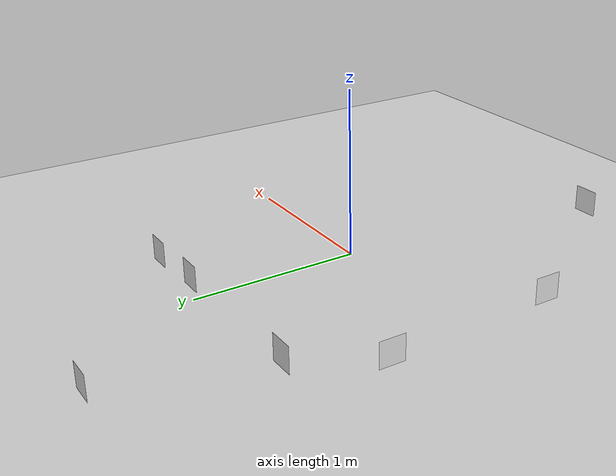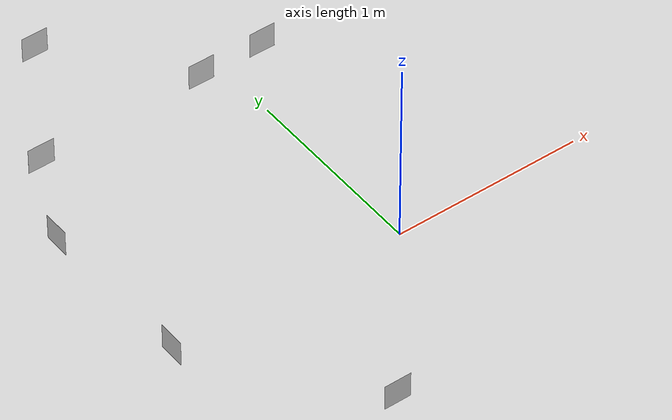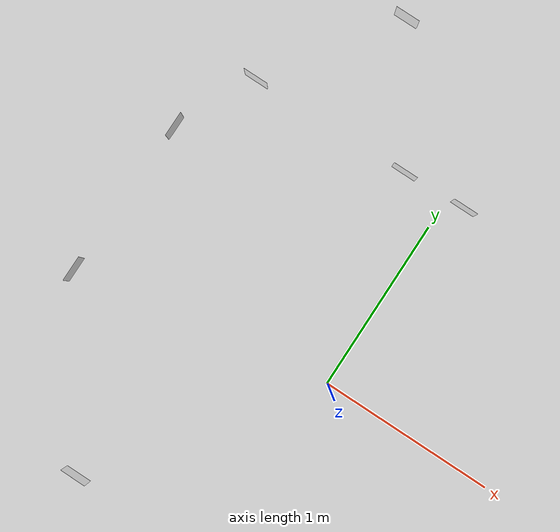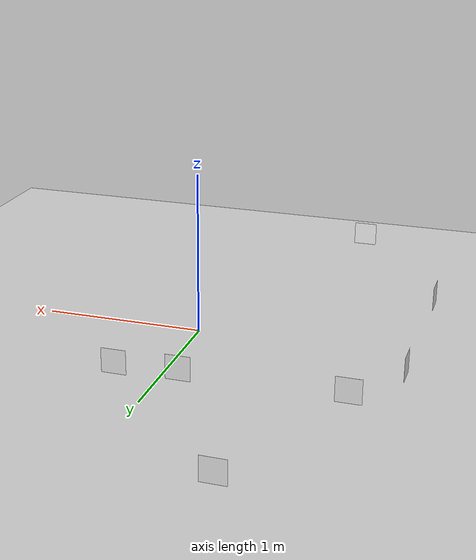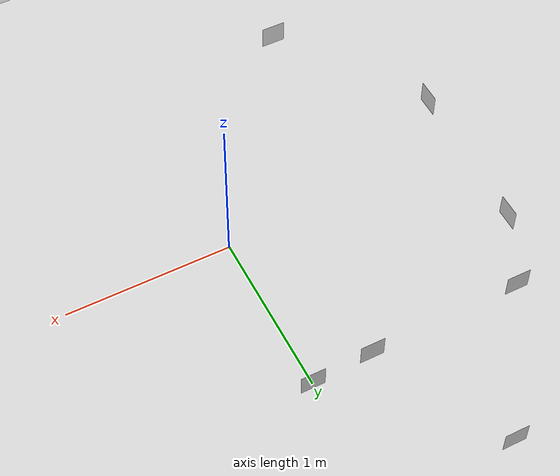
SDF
<sdf version="1.6">
 <world name="default">
  <light name="sun" type="directional">
   <pose>0 0 10 0 -0 0</pose>
   <diffuse>0.8 0.8 0.8 1</diffuse>
   <specular>0.1 0.1 0.1 1</specular>
   <attenuation>
    <range>1000</range>
    <constant>0.9</constant>
    <linear>0.01</linear>
    <quadratic>0.001</quadratic>
   </attenuation>
   <direction>-0.5 0.5 -1</direction>
  </light>
  <model name="ground_plane">
   <static>1</static>
   <link name="link">
    <collision name="collision">
     <geometry><plane><normal>0 0 1</normal><size>100 100</size></plane></geometry>
     <surface><friction><ode><mu>100</mu><mu2>50</mu2></ode></friction></surface>
    </collision>
    <visual name="visual">
     <cast_shadows>0</cast_shadows>
     <geometry><plane><normal>0 0 1</normal><size>100 100</size></plane></geometry>
     <material>
      <script><uri>file://media/materials/scripts/gazebo.material</uri><name>Gazebo/Grey</name></script>
     </material>
    </visual>
   </link>
  </model>
  <gravity>0 0 -9.8</gravity>
  <magnetic_field>6e-06 2.3e-05 -4.2e-05</magnetic_field>
  <atmosphere type="adiabatic"/>
  <physics name="default_physics" default="0" type="ode">
   <max_step_size>0.001</max_step_size>
   <real_time_factor>1</real_time_factor>
   <real_time_update_rate>1000</real_time_update_rate>
  </physics>
  <scene><ambient>0.4 0.4 0.4 1</ambient><background>0.7 0.7 0.7 1</background><shadows>1</shadows></scene>
  <spherical_coordinates>
   <surface_model>EARTH_WGS84</surface_model>
   <latitude_deg>0</latitude_deg>
   <longitude_deg>0</longitude_deg>
   <elevation>0</elevation>
   <heading_deg>0</heading_deg>
  </spherical_coordinates>
  <model name="aruco_visual_marker_1">
   <link name="marker">
    <visual name="visual">
     <geometry><box><size>0.14 0.14 1e-05</size></box></geometry>
     <material>
      <script>
       <uri>model://aruco_visual_marker_1/materials/scripts</uri>
       <uri>model://aruco_visual_marker_1/materials/textures</uri>
       <name>ArucoVisualMarker1/Marker</name>
      </script>
      <ambient>1 1 1 1</ambient>
      <diffuse>1 1 1 1</diffuse>
      <specular>0 0 0 1</specular>
      <emissive>1 1 1 0</emissive>
      <shader type="vertex"><normal_map>__default__</normal_map></shader>
     </material>
    </visual>
    <collision name="collision"><geometry><box><size>0.14 0.14 1e-05</size></box></geometry></collision>
   </link>
   <link name="marker_pad">
    <pose frame="marker">0 0 -1e-05 0 -0 0</pose>
    <visual name="visual">
     <geometry><box><size>0.14 0.14 1e-05</size></box></geometry>
     <material>
      <lighting>1</lighting>
      <script><uri>file://media/materials/scripts/gazebo.material</uri><name>Gazebo/White</name></script>
      <ambient>0.3 0.3 0.3 1</ambient>
      <diffuse>0.7 0.7 0.7 1</diffuse>
      <specular>0.01 0.01 0.01 1</specular>
      <emissive>1 1 1 0</emissive>
      <shader type="vertex"><normal_map>__default__</normal_map></shader>
     </material>
    </visual>
    <collision name="collision"><geometry><box><size>0.14 0.14 1e-05</size></box></geometry></collision>
   </link>
   <joint name="marker_JOINT_marker_pad" type="revolute">
    <parent>marker</parent>
    <child>marker_pad</child>
    <axis>
     <xyz>0 0 1</xyz>
     <limit><upper>0</upper><lower>0</lower></limit>
     <use_parent_model_frame>0</use_parent_model_frame>
     <dynamics><spring_reference>0</spring_reference><spring_stiffness>0</spring_stiffness></dynamics>
    </axis>
   </joint>
   <static>1</static>
   <pose>0.074072 1.13752 0.298496 1.57156 -0 0</pose>
  </model>
  <model name="aruco_visual_marker_2">
   <link name="marker">
    <visual name="visual">
     <geometry><box><size>0.14 0.14 1e-05</size></box></geometry>
     <material>
      <script>
       <uri>model://aruco_visual_marker_2/materials/scripts</uri>
       <uri>model://aruco_visual_marker_2/materials/textures</uri>
       <name>ArucoVisualMarker2/Marker</name>
      </script>
      <ambient>1 1 1 1</ambient>
      <diffuse>1 1 1 1</diffuse>
      <specular>0 0 0 1</specular>
      <emissive>1 1 1 0</emissive>
      <shader type="vertex"><normal_map>__default__</normal_map></shader>
     </material>
    </visual>
    <collision name="collision"><geometry><box><size>0.14 0.14 1e-05</size></box></geometry></collision>
   </link>
   <link name="marker_pad">
    <pose frame="marker">0 0 -1e-05 0 -0 0</pose>
    <visual name="visual">
     <geometry><box><size>0.14 0.14 1e-05</size></box></geometry>
     <material>
      <lighting>1</lighting>
      <script><uri>file://media/materials/scripts/gazebo.material</uri><name>Gazebo/White</name></script>
      <ambient>0.3 0.3 0.3 1</ambient>
      <diffuse>0.7 0.7 0.7 1</diffuse>
      <specular>0.01 0.01 0.01 1</specular>
      <emissive>1 1 1 0</emissive>
      <shader type="vertex"><normal_map>__default__</normal_map></shader>
     </material>
    </visual>
    <collision name="collision"><geometry><box><size>0.14 0.14 1e-05</size></box></geometry></collision>
   </link>
   <joint name="marker_JOINT_marker_pad" type="revolute">
    <parent>marker</parent>
    <child>marker_pad</child>
    <axis>
     <xyz>0 0 1</xyz>
     <limit><upper>0</upper><lower>0</lower></limit>
     <use_parent_model_frame>0</use_parent_model_frame>
     <dynamics><spring_reference>0</spring_reference><spring_stiffness>0</spring_stiffness></dynamics>
    </axis>
   </joint>
   <static>1</static>
   <pose>-0.278576 1.12393 0.307382 1.57191 -0 0</pose>
  </model>
  <model name="aruco_visual_marker_3">
   <link name="marker">
    <visual name="visual">
     <geometry><box><size>0.14 0.14 1e-05</size></box></geometry>
     <material>
      <script>
       <uri>model://aruco_visual_marker_3/materials/scripts</uri>
       <uri>model://aruco_visual_marker_3/materials/textures</uri>
       <name>ArucoVisualMarker3/Marker</name>
      </script>
      <ambient>1 1 1 1</ambient>
      <diffuse>1 1 1 1</diffuse>
      <specular>0 0 0 1</specular>
      <emissive>1 1 1 0</emissive>
      <shader type="vertex"><normal_map>__default__</normal_map></shader>
     </material>
    </visual>
    <collision name="collision"><geometry><box><size>0.14 0.14 1e-05</size></box></geometry></collision>
   </link>
   <link name="marker_pad">
    <pose frame="marker">0 0 -1e-05 0 -0 0</pose>
    <visual name="visual">
     <geometry><box><size>0.14 0.14 1e-05</size></box></geometry>
     <material>
      <lighting>1</lighting>
      <script><uri>file://media/materials/scripts/gazebo.material</uri><name>Gazebo/White</name></script>
      <ambient>0.3 0.3 0.3 1</ambient>
      <diffuse>0.7 0.7 0.7 1</diffuse>
      <specular>0.01 0.01 0.01 1</specular>
      <emissive>1 1 1 0</emissive>
      <shader type="vertex"><normal_map>__default__</normal_map></shader>
     </material>
    </visual>
    <collision name="collision"><geometry><box><size>0.14 0.14 1e-05</size></box></geometry></collision>
   </link>
   <joint name="marker_JOINT_marker_pad" type="revolute">
    <parent>marker</parent>
    <child>marker_pad</child>
    <axis>
     <xyz>0 0 1</xyz>
     <limit><upper>0</upper><lower>0</lower></limit>
     <use_parent_model_frame>0</use_parent_model_frame>
     <dynamics><spring_reference>0</spring_reference><spring_stiffness>0</spring_stiffness></dynamics>
    </axis>
   </joint>
   <static>1</static>
   <pose>-0.711337 1.83655 0.184507 1.56779 -0 0</pose>
  </model>
  <model name="aruco_visual_marker_4">
   <link name="marker">
    <visual name="visual">
     <geometry><box><size>0.14 0.14 1e-05</size></box></geometry>
     <material>
      <script>
       <uri>model://aruco_visual_marker_4/materials/scripts</uri>
       <uri>model://aruco_visual_marker_4/materials/textures</uri>
       <name>ArucoVisualMarker4/Marker</name>
      </script>
      <ambient>1 1 1 1</ambient>
      <diffuse>1 1 1 1</diffuse>
      <specular>0 0 0 1</specular>
      <emissive>1 1 1 0</emissive>
      <shader type="vertex"><normal_map>__default__</normal_map></shader>
     </material>
    </visual>
    <collision name="collision"><geometry><box><size>0.14 0.14 1e-05</size></box></geometry></collision>
   </link>
   <link name="marker_pad">
    <pose frame="marker">0 0 -1e-05 0 -0 0</pose>
    <visual name="visual">
     <geometry><box><size>0.14 0.14 1e-05</size></box></geometry>
     <material>
      <lighting>1</lighting>
      <script><uri>file://media/materials/scripts/gazebo.material</uri><name>Gazebo/White</name></script>
      <ambient>0.3 0.3 0.3 1</ambient>
      <diffuse>0.7 0.7 0.7 1</diffuse>
      <specular>0.01 0.01 0.01 1</specular>
      <emissive>1 1 1 0</emissive>
      <shader type="vertex"><normal_map>__default__</normal_map></shader>
     </material>
    </visual>
    <collision name="collision"><geometry><box><size>0.14 0.14 1e-05</size></box></geometry></collision>
   </link>
   <joint name="marker_JOINT_marker_pad" type="revolute">
    <parent>marker</parent>
    <child>marker_pad</child>
    <axis>
     <xyz>0 0 1</xyz>
     <limit><upper>0</upper><lower>0</lower></limit>
     <use_parent_model_frame>0</use_parent_model_frame>
     <dynamics><spring_reference>0</spring_reference><spring_stiffness>0</spring_stiffness></dynamics>
    </axis>
   </joint>
   <static>1</static>
   <pose>-1.17245 1.10825 0.311387 1.57508 -0 0</pose>
  </model>
  <model name="aruco_visual_marker_5">
   <link name="marker">
    <visual name="visual">
     <geometry><box><size>0.14 0.14 1e-05</size></box></geometry>
     <material>
      <script>
       <uri>model://aruco_visual_marker_5/materials/scripts</uri>
       <uri>model://aruco_visual_marker_5/materials/textures</uri>
       <name>ArucoVisualMarker5/Marker</name>
      </script>
      <ambient>1 1 1 1</ambient>
      <diffuse>1 1 1 1</diffuse>
      <specular>0 0 0 1</specular>
      <emissive>1 1 1 0</emissive>
      <shader type="vertex"><normal_map>__default__</normal_map></shader>
     </material>
    </visual>
    <collision name="collision"><geometry><box><size>0.14 0.14 1e-05</size></box></geometry></collision>
   </link>
   <link name="marker_pad">
    <pose frame="marker">0 0 -1e-05 0 -0 0</pose>
    <visual name="visual">
     <geometry><box><size>0.14 0.14 1e-05</size></box></geometry>
     <material>
      <lighting>1</lighting>
      <script><uri>file://media/materials/scripts/gazebo.material</uri><name>Gazebo/White</name></script>
      <ambient>0.3 0.3 0.3 1</ambient>
      <diffuse>0.7 0.7 0.7 1</diffuse>
      <specular>0.01 0.01 0.01 1</specular>
      <emissive>1 1 1 0</emissive>
      <shader type="vertex"><normal_map>__default__</normal_map></shader>
     </material>
    </visual>
    <collision name="collision"><geometry><box><size>0.14 0.14 1e-05</size></box></geometry></collision>
   </link>
   <joint name="marker_JOINT_marker_pad" type="revolute">
    <parent>marker</parent>
    <child>marker_pad</child>
    <axis>
     <xyz>0 0 1</xyz>
     <limit><upper>0</upper><lower>0</lower></limit>
     <use_parent_model_frame>0</use_parent_model_frame>
     <dynamics><spring_reference>0</spring_reference><spring_stiffness>0</spring_stiffness></dynamics>
    </axis>
   </joint>
   <static>1</static>
   <pose>-1.38856 0.679826 0.286447 0 1.56803 0</pose>
  </model>
  <model name="aruco_visual_marker_6">
   <link name="marker">
    <visual name="visual">
     <geometry><box><size>0.14 0.14 1e-05</size></box></geometry>
     <material>
      <script>
       <uri>model://aruco_visual_marker_6/materials/scripts</uri>
       <uri>model://aruco_visual_marker_6/materials/textures</uri>
       <name>ArucoVisualMarker6/Marker</name>
      </script>
      <ambient>1 1 1 1</ambient>
      <diffuse>1 1 1 1</diffuse>
      <specular>0 0 0 1</specular>
      <emissive>1 1 1 0</emissive>
      <shader type="vertex"><normal_map>__default__</normal_map></shader>
     </material>
    </visual>
    <collision name="collision"><geometry><box><size>0.14 0.14 1e-05</size></box></geometry></collision>
   </link>
   <link name="marker_pad">
    <pose frame="marker">0 0 -1e-05 0 -0 0</pose>
    <visual name="visual">
     <geometry><box><size>0.14 0.14 1e-05</size></box></geometry>
     <material>
      <lighting>1</lighting>
      <script><uri>file://media/materials/scripts/gazebo.material</uri><name>Gazebo/White</name></script>
      <ambient>0.3 0.3 0.3 1</ambient>
      <diffuse>0.7 0.7 0.7 1</diffuse>
      <specular>0.01 0.01 0.01 1</specular>
      <emissive>1 1 1 0</emissive>
      <shader type="vertex"><normal_map>__default__</normal_map></shader>
     </material>
    </visual>
    <collision name="collision"><geometry><box><size>0.14 0.14 1e-05</size></box></geometry></collision>
   </link>
   <joint name="marker_JOINT_marker_pad" type="revolute">
    <parent>marker</parent>
    <child>marker_pad</child>
    <axis>
     <xyz>0 0 1</xyz>
     <limit><upper>0</upper><lower>0</lower></limit>
     <use_parent_model_frame>0</use_parent_model_frame>
     <dynamics><spring_reference>0</spring_reference><spring_stiffness>0</spring_stiffness></dynamics>
    </axis>
   </joint>
   <static>1</static>
   <pose>-1.39923 -0.205842 0.336149 0 1.56943 0</pose>
  </model>
  <model name="aruco_visual_marker_7">
   <link name="marker">
    <visual name="visual">
     <geometry><box><size>0.14 0.14 1e-05</size></box></geometry>
     <material>
      <script>
       <uri>model://aruco_visual_marker_7/materials/scripts</uri>
       <uri>model://aruco_visual_marker_7/materials/textures</uri>
       <name>ArucoVisualMarker7/Marker</name>
      </script>
      <ambient>1 1 1 1</ambient>
      <diffuse>1 1 1 1</diffuse>
      <specular>0 0 0 1</specular>
      <emissive>1 1 1 0</emissive>
      <shader type="vertex"><normal_map>__default__</normal_map></shader>
     </material>
    </visual>
    <collision name="collision"><geometry><box><size>0.14 0.14 1e-05</size></box></geometry></collision>
   </link>
   <link name="marker_pad">
    <pose frame="marker">0 0 -1e-05 0 -0 0</pose>
    <visual name="visual">
     <geometry><box><size>0.14 0.14 1e-05</size></box></geometry>
     <material>
      <lighting>1</lighting>
      <script><uri>file://media/materials/scripts/gazebo.material</uri><name>Gazebo/White</name></script>
      <ambient>0.3 0.3 0.3 1</ambient>
      <diffuse>0.7 0.7 0.7 1</diffuse>
      <specular>0.01 0.01 0.01 1</specular>
      <emissive>1 1 1 0</emissive>
      <shader type="vertex"><normal_map>__default__</normal_map></shader>
     </material>
    </visual>
    <collision name="collision"><geometry><box><size>0.14 0.14 1e-05</size></box></geometry></collision>
   </link>
   <joint name="marker_JOINT_marker_pad" type="revolute">
    <parent>marker</parent>
    <child>marker_pad</child>
    <axis>
     <xyz>0 0 1</xyz>
     <limit><upper>0</upper><lower>0</lower></limit>
     <use_parent_model_frame>0</use_parent_model_frame>
     <dynamics><spring_reference>0</spring_reference><spring_stiffness>0</spring_stiffness></dynamics>
    </axis>
   </joint>
   <static>1</static>
   <pose>-0.811895 -1.03872 0.383029 -1.56934 0 0</pose>
  </model>
 </world>
</sdf>
